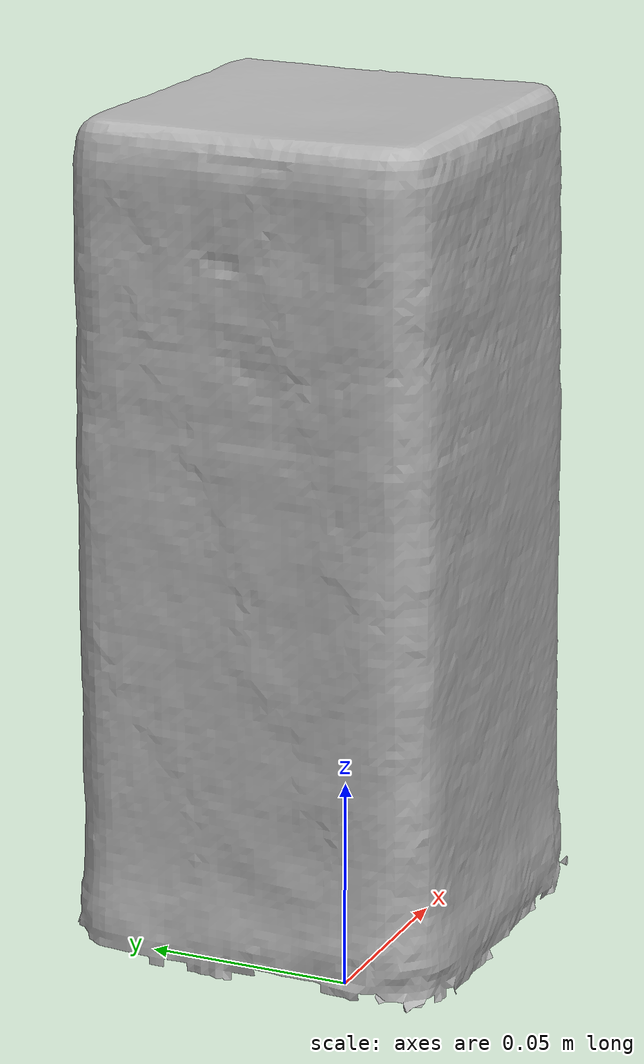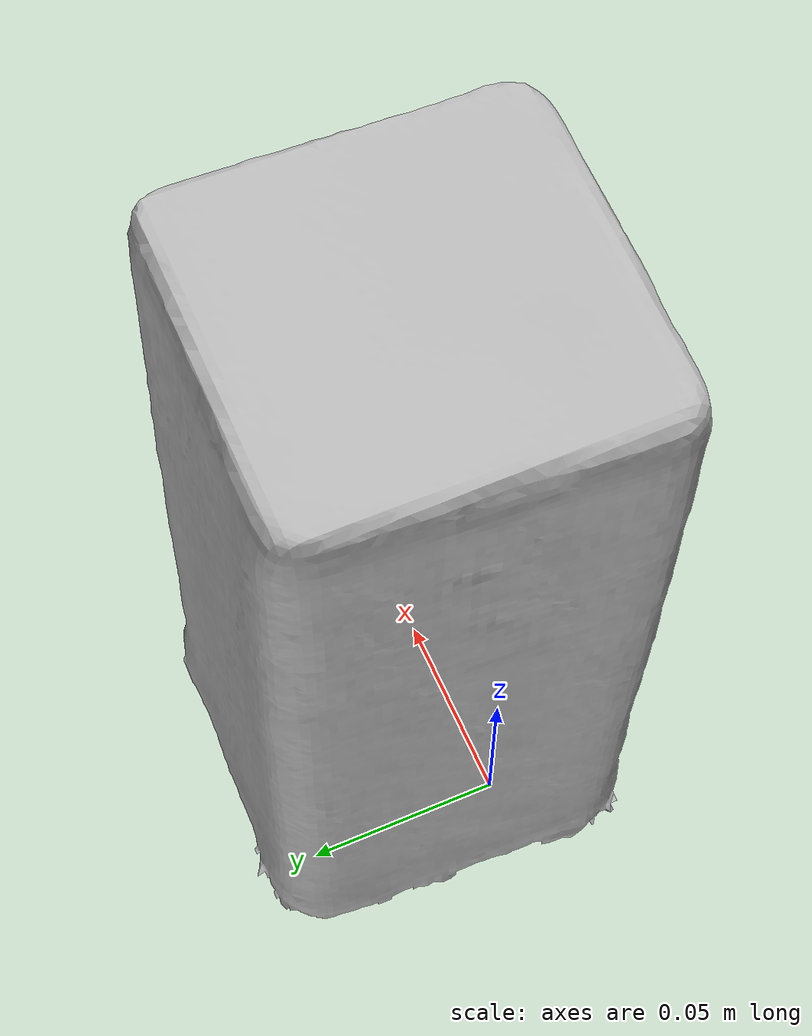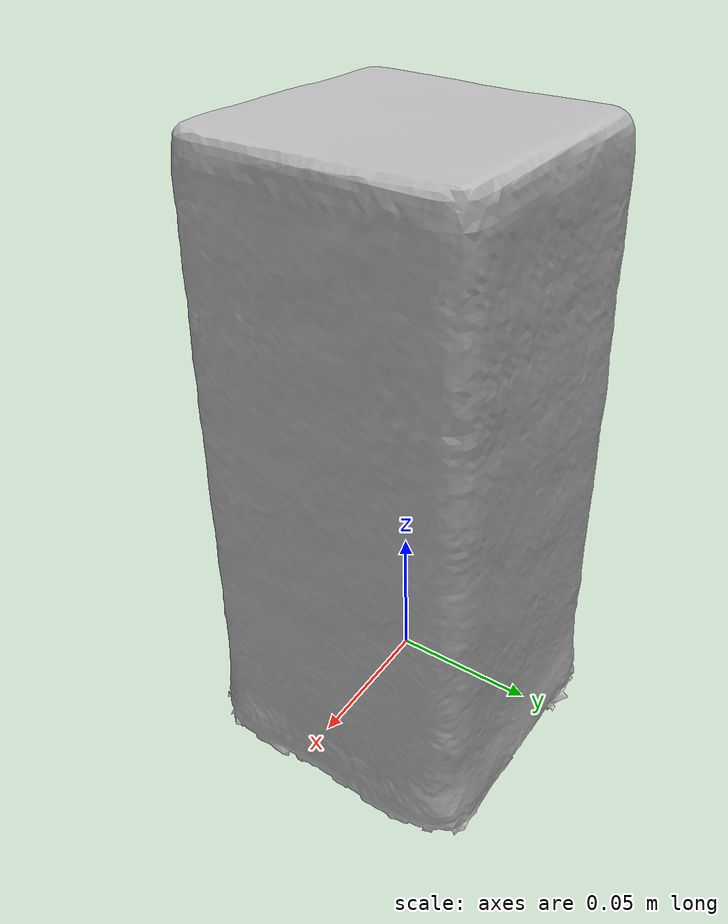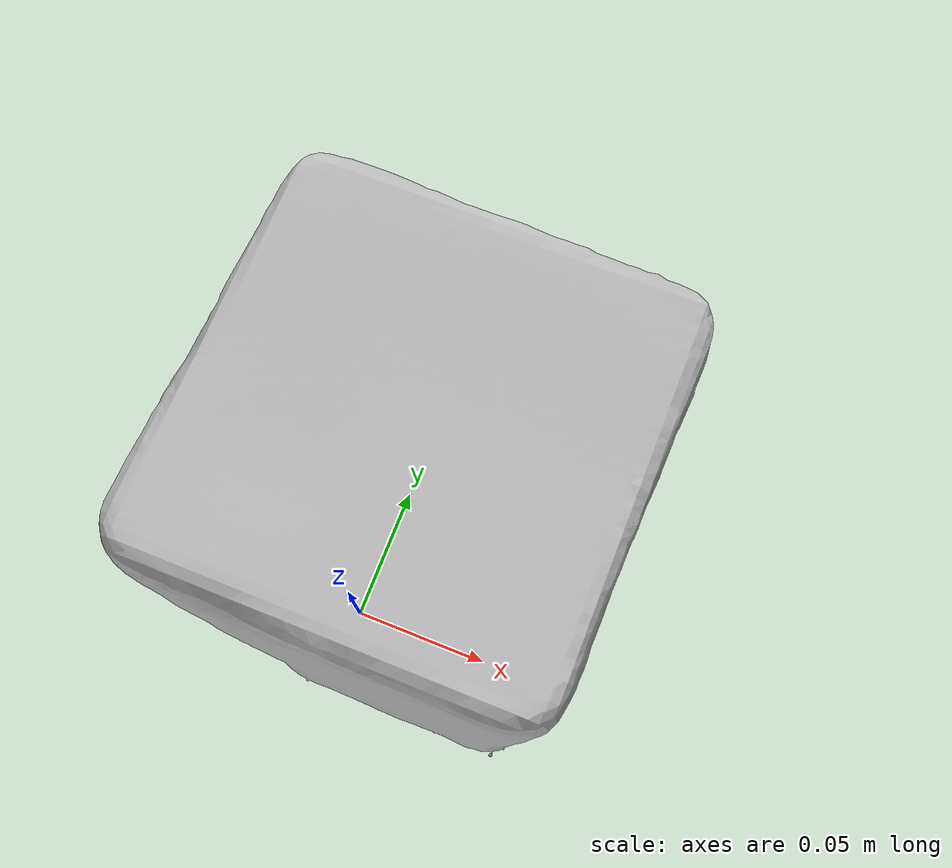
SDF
<?xml version="1.0" ?>
<sdf version="1.4">
  <model name="036_wood_block">
    <pose>0 0 0  0 0 0</pose>
    <link name="body">
      <inertial>
        <!-- Volume:  1.5610465090e-03 -->
        <mass> 1.0 </mass>
        <!-- Center of mass:  2.1451310000e-02  1.4107210000e-02  1.0637260000e-01 -->
        <pose>  2.1451310000e-02  1.4107210000e-02  1.0637260000e-01 0 0 0 </pose>
        <!-- Inertia matrix -->
        <inertia>
          <ixx>  3.9111217594e-03 </ixx>
          <ixy> -5.1898082173e-06 </ixy>
          <ixz>  6.8754207502e-05 </ixz>
          <iyy>  3.8926032828e-03 </iyy>
          <iyz>  1.2654866710e-05 </iyz>
          <izz>  1.2877826896e-03 </izz>
        </inertia>
      </inertial>
      <visual name="visual">
        <geometry>
          <mesh>
            <uri>model://036_wood_block/nontextured.stl</uri>
          </mesh>
        </geometry>
      </visual>
      <collision name="collision">
        <geometry>
          <mesh>
            <uri>model://036_wood_block/nontextured.stl</uri>
          </mesh>
        </geometry>
        <max_contacts>10</max_contacts>
        <surface>
          <friction>
            <ode>
              <mu>0.8</mu>
              <mu2>0.8</mu2>
              <slip1>0</slip1>
              <slip2>0</slip2>
            </ode>
            <torsional>
              <ode/>
            </torsional>
          </friction>
          <contact>
            <ode>
              <kp>1000000.0</kp>
              <kd>1.0</kd>
              <max_vel>0.0</max_vel>
            </ode>
          </contact>
        </surface>
      </collision>
    </link>
  </model>
</sdf>
